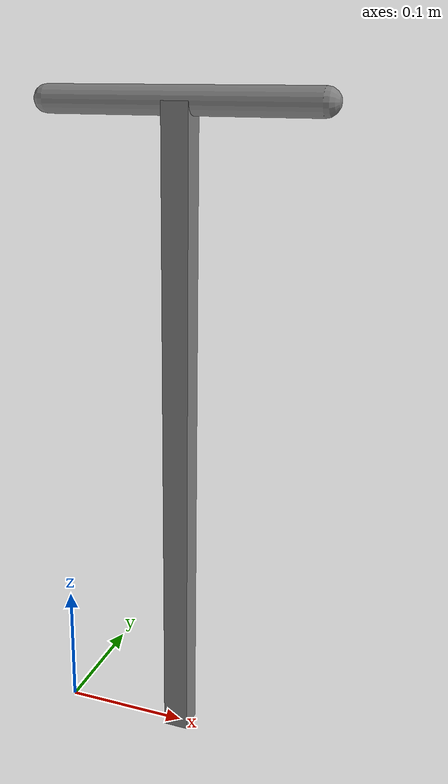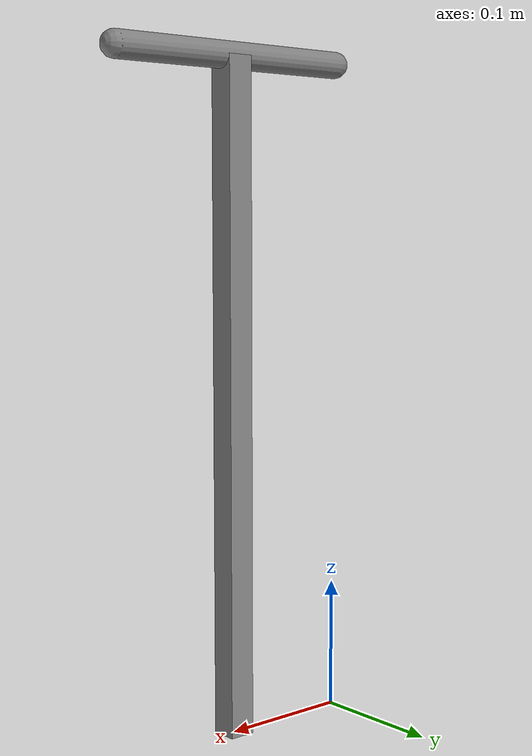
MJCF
<mujoco>
    <compiler angle = "degree"/>
    <option timestep = "0.002"/>
    <option>
        <flag gravity = "enable" contact = "disable"/>

    </option>
    <worldbody>
        <geom name="floor" type="plane" pos="0 0 -.5" size="2 2 .1" rgba = "1 1 1 1" mass = "0"/>
        <body name = "propeller_base" pos = "0.1 0 .5" >
            <geom type = "capsule" size = ".01 .1" axisangle = "0 1 0 90" mass = ".000001"/>

            <body name = "leg_1">

                <joint type = "hinge" name = "prop_base_joint" axis = "0 1 0" pos = "0 0 0"/>

                <geom type = "box" fromto = "0 0 0 0 0 -.5" name = "leg_1_stick" size = ".01 .01" mass = "1"/>
                <site size = ".001" name = "IMU_loc" pos = "0 0 -.25"/>
                <site size = ".0001" name = "leg_end" pos = "0 0 -.5"/>

            </body>
        </body>

    </worldbody>
    <sensor>
        <accelerometer name = "IMU_acc" site = "IMU_loc" noise = ".2"/>
        <gyro name = "IMU_gyro" site = "IMU_loc" noise = ".2"/>

    </sensor>
</mujoco>
